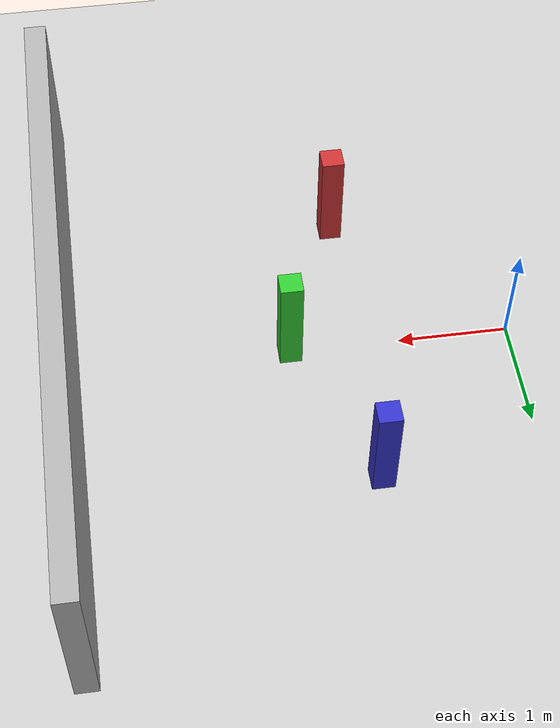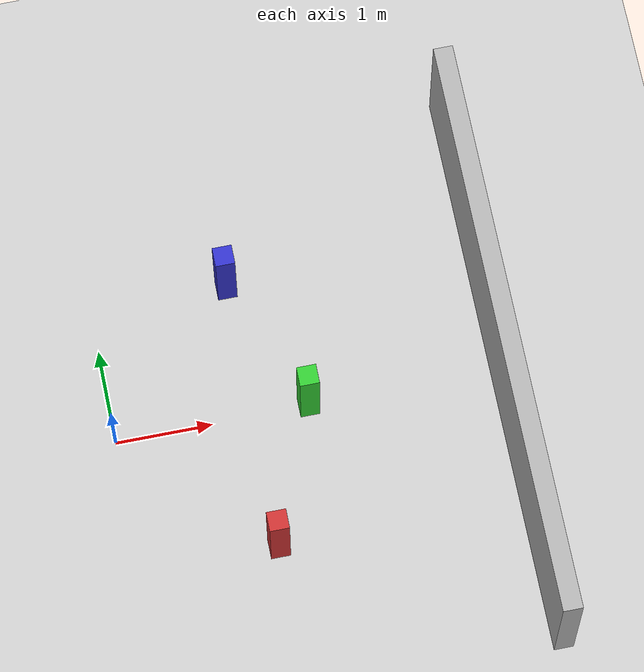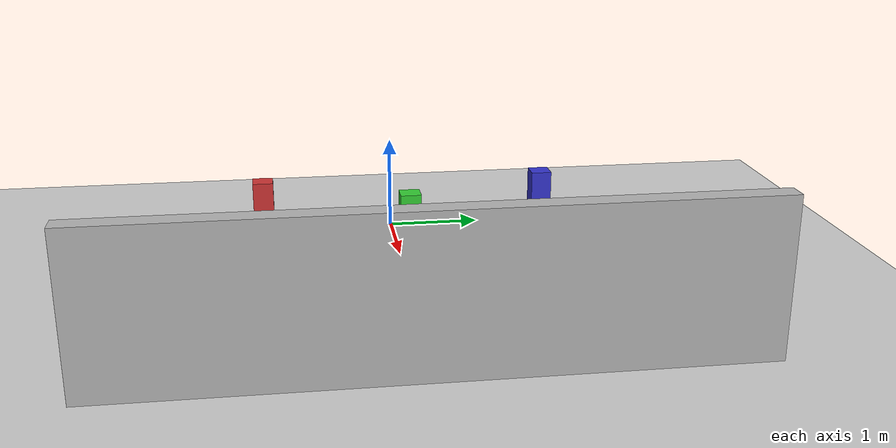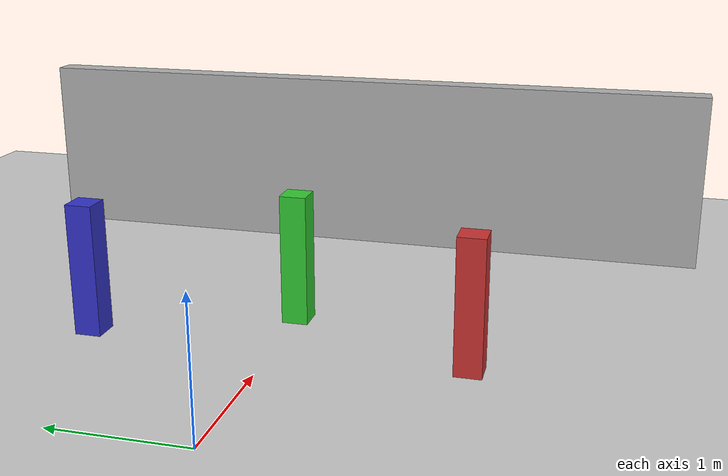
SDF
<?xml version="1.0"?>
<sdf version="1.9">
  <world name="lidar_range_showcase">

    <!-- Enable GPU sensors -->
    <plugin filename="gz-sim-sensors-system" name="gz::sim::systems::Sensors">
      <render_engine>ogre2</render_engine>
    </plugin>

    <!-- Lighting & ground -->
    <include>
      <uri>model://sun</uri>
    </include>
    <include>
      <uri>model://ground_plane</uri>
    </include>

    <!-- === Targets at known ranges ===
         Robot assumed at (0,0,0) yaw=0, lidar facing +X.
         2 m pylons at center & ±45°, plus a 4 m wide wall. -->

    <!-- 2 m center pylon -->
    <model name="pylon_2m_center">
      <static>true</static>
      <pose>2 0 0 0 0 0</pose> <!-- x y z yaw pitch roll -->
      <link name="link">
        <pose>0 0 0.5 0 0 0</pose>
        <visual name="v">
          <geometry><box><size>0.2 0.2 1.0</size></box></geometry>
          <material><ambient>0.2 0.8 0.2 1</ambient></material>
          <laser_retro>100</laser_retro>
        </visual>
        <collision name="c">
          <geometry><box><size>0.2 0.2 1.0</size></box></geometry>
        </collision>
      </link>
    </model>

    <!-- 2 m left pylon at +45° (x=1.414, y=+1.414) -->
    <model name="pylon_2m_left45">
      <static>true</static>
      <pose>1.41421356 1.41421356 0 0 0 0</pose>
      <link name="link">
        <pose>0 0 0.5 0 0 0</pose>
        <visual name="v">
          <geometry><box><size>0.2 0.2 1.0</size></box></geometry>
          <material><ambient>0.2 0.2 0.8 1</ambient></material>
          <laser_retro>120</laser_retro>
        </visual>
        <collision name="c">
          <geometry><box><size>0.2 0.2 1.0</size></box></geometry>
        </collision>
      </link>
    </model>

    <!-- 2 m right pylon at -45° (x=1.414, y=-1.414) -->
    <model name="pylon_2m_right45">
      <static>true</static>
      <pose>1.41421356 -1.41421356 0 0 0 0</pose>
      <link name="link">
        <pose>0 0 0.5 0 0 0</pose>
        <visual name="v">
          <geometry><box><size>0.2 0.2 1.0</size></box></geometry>
          <material><ambient>0.8 0.2 0.2 1</ambient></material>
          <laser_retro>140</laser_retro>
        </visual>
        <collision name="c">
          <geometry><box><size>0.2 0.2 1.0</size></box></geometry>
        </collision>
      </link>
    </model>

    <!-- Wide wall at 4 m: continuous band of ~4.0 m returns -->
    <model name="wall_4m">
      <static>true</static>
      <pose>4 0 0 0 0 0</pose>
      <link name="link">
        <pose>0 0 0.75 0 0 0</pose>
        <visual name="v">
          <geometry><box><size>0.2 6.0 1.5</size></box></geometry>
          <material><ambient>0.7 0.7 0.7 1</ambient></material>
          <laser_retro>200</laser_retro>
        </visual>
        <collision name="c">
          <geometry><box><size>0.2 6.0 1.5</size></box></geometry>
        </collision>
      </link>
    </model>

  </world>
</sdf>
